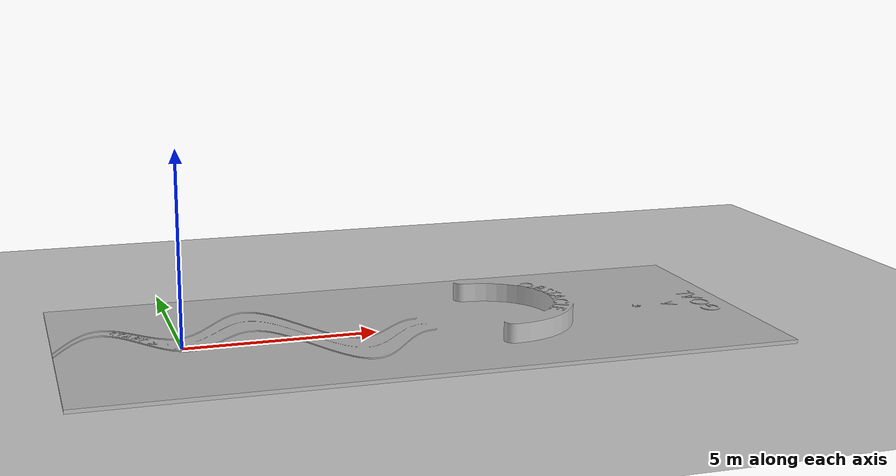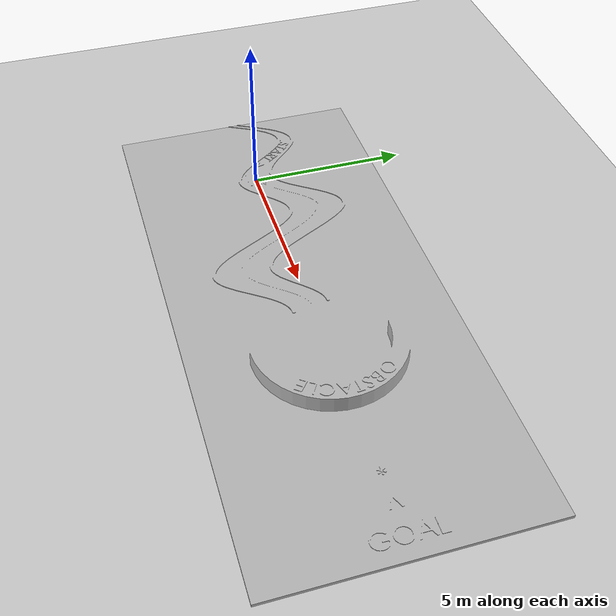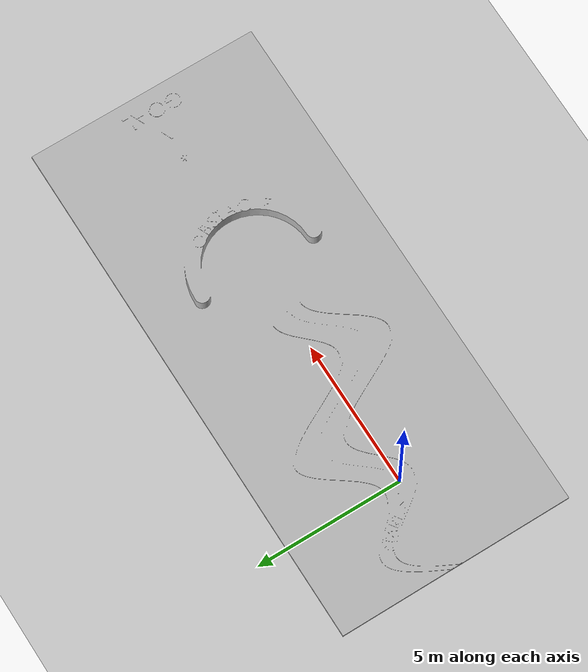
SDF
<?xml version="1.0"?>
<sdf version="1.6">
  <world name="default">

    <include>
      <uri>model://sun</uri>
    </include>

    <include>
      <uri>model://ground_plane</uri>
    </include>

    <include>
      <uri>model://task1arena</uri>
    </include>

  </world>
</sdf>

<!-- branch ebot  -->

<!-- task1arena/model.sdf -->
<sdf version="1.6">
  <model name="task1arena">
    <pose>-3.14159265359 4 0  1.57079632679 0 0</pose>
    <static>true</static>
    <link name="link">
      <collision name="colision1">
        <geometry>
          <mesh>
            <uri>model://task1arena/meshes/task1arena.dae</uri>
            <scale>0.001 0.001 0.001</scale>
          </mesh>
        </geometry>
      </collision>

      <visual name="visual1">
        <cast_shadows>true</cast_shadows>
        <geometry>
          <mesh>
            <uri>model://task1arena/meshes/task1arena.dae</uri>
            <scale>0.001 0.001 0.001</scale>
          </mesh>
        </geometry>
      </visual>

    </link>
  </model>
</sdf>
